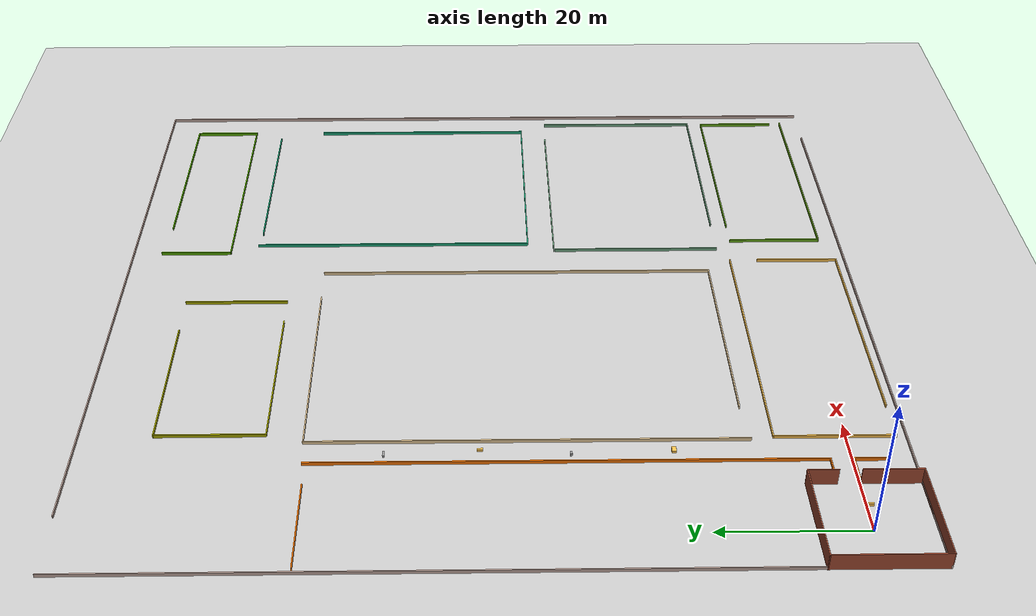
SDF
<sdf version="1.7">
 <world name="default">
  <light name="sun" type="directional">
   <pose>0 0 10 0 -0 0</pose>
   <diffuse>0.8 0.8 0.8 1</diffuse>
   <specular>0.2 0.2 0.2 1</specular>
   <attenuation>
    <range>1000</range>
    <constant>0.9</constant>
    <linear>0.01</linear>
    <quadratic>0.001</quadratic>
   </attenuation>
   <direction>-0.5 0.1 -0.9</direction>
   <spot><inner_angle>0</inner_angle><outer_angle>0</outer_angle><falloff>0</falloff></spot>
  </light>
  <model name="ground_plane">
   <static>1</static>
   <link name="link">
    <collision name="collision">
     <geometry><plane><normal>0 0 1</normal><size>100 100</size></plane></geometry>
     <surface><friction><ode><mu>100</mu><mu2>50</mu2></ode></friction></surface>
    </collision>
    <visual name="visual">
     <cast_shadows>0</cast_shadows>
     <geometry><plane><normal>0 0 1</normal><size>100 100</size></plane></geometry>
     <material>
      <script><uri>file://media/materials/scripts/gazebo.material</uri><name>Gazebo/Grey</name></script>
     </material>
    </visual>
   </link>
  </model>
  <gravity>0 0 -9.8</gravity>
  <magnetic_field>6e-06 2.3e-05 -4.2e-05</magnetic_field>
  <atmosphere type="adiabatic"/>
  <physics type="ode">
   <max_step_size>0.001</max_step_size>
   <real_time_factor>1</real_time_factor>
   <real_time_update_rate>1000</real_time_update_rate>
  </physics>
  <scene><ambient>0.4 0.4 0.4 1</ambient><background>0.7 0.7 0.7 1</background><shadows>1</shadows></scene>
  <spherical_coordinates>
   <surface_model>EARTH_WGS84</surface_model>
   <latitude_deg>0</latitude_deg>
   <longitude_deg>0</longitude_deg>
   <elevation>0</elevation>
   <heading_deg>0</heading_deg>
  </spherical_coordinates>
  <model name="farm">
   <pose>48.5764 47.0179 0 0 -0 0</pose>
   <link name="Wall_12">
    <collision name="Wall_12_Collision">
     <geometry><box><size>100.15 0.15 0.5</size></box></geometry>
     <pose>0 0 0.25 0 -0 0</pose>
    </collision>
    <visual name="Wall_12_Visual">
     <pose>0 0 0.25 0 -0 0</pose>
     <geometry><box><size>100.15 0.15 0.5</size></box></geometry>
     <material>
      <script><uri>file://media/materials/scripts/gazebo.material</uri><name>Gazebo/Grey</name></script>
      <ambient>0.760784 0.662745 0.627451 1</ambient>
     </material>
     <meta><layer>0</layer></meta>
    </visual>
    <pose>4.99351 55.0001 0 0 -0 0</pose>
   </link>
   <link name="Wall_13">
    <collision name="Wall_13_Collision">
     <geometry><box><size>110.15 0.15 0.5</size></box></geometry>
     <pose>0 0 0.25 0 -0 0</pose>
    </collision>
    <visual name="Wall_13_Visual">
     <pose>0 0 0.25 0 -0 0</pose>
     <geometry><box><size>110.15 0.15 0.5</size></box></geometry>
     <material>
      <script><uri>file://media/materials/scripts/gazebo.material</uri><name>Gazebo/Grey</name></script>
      <ambient>0.760784 0.662745 0.627451 1</ambient>
     </material>
     <meta><layer>0</layer></meta>
    </visual>
    <pose>55 5e-05 0 0 -0 -1.57068</pose>
   </link>
   <link name="Wall_15">
    <collision name="Wall_15_Collision">
     <geometry><box><size>110.15 0.15 0.5</size></box></geometry>
     <pose>0 0 0.25 0 -0 0</pose>
    </collision>
    <visual name="Wall_15_Visual">
     <pose>0 0 0.25 0 -0 0</pose>
     <geometry><box><size>110.15 0.15 0.5</size></box></geometry>
     <material>
      <script><uri>file://media/materials/scripts/gazebo.material</uri><name>Gazebo/Grey</name></script>
      <ambient>0.760784 0.662745 0.627451 1</ambient>
     </material>
     <meta><layer>0</layer></meta>
    </visual>
    <pose>-54.9825 5e-05 0 0 -0 1.57123</pose>
   </link>
   <link name="Wall_17">
    <collision name="Wall_17_Collision">
     <geometry><box><size>102.202 0.15 0.5</size></box></geometry>
     <pose>0 0 0.25 0 -0 0</pose>
    </collision>
    <visual name="Wall_17_Visual">
     <pose>0 0 0.25 0 -0 0</pose>
     <geometry><box><size>102.202 0.15 0.5</size></box></geometry>
     <material>
      <script><uri>file://media/materials/scripts/gazebo.material</uri><name>Gazebo/Grey</name></script>
      <ambient>0.760784 0.662745 0.627451 1</ambient>
     </material>
     <meta><layer>0</layer></meta>
    </visual>
    <pose>-3.93249 -54.9999 0 0 -0 0</pose>
   </link>
   <link name="Wall_20">
    <collision name="Wall_20_Collision">
     <geometry><box><size>15.1281 0.15 2.5</size></box></geometry>
     <pose>0 0 1.25 0 -0 0</pose>
    </collision>
    <visual name="Wall_20_Visual">
     <pose>0 0 1.25 0 -0 0</pose>
     <geometry><box><size>15.1281 0.15 2.5</size></box></geometry>
     <material>
      <script><uri>file://media/materials/scripts/gazebo.material</uri><name>Gazebo/Bricks</name></script>
      <ambient>1 1 1 1</ambient>
     </material>
     <meta><layer>0</layer></meta>
    </visual>
    <pose>-47.4955 -39.9999 0 0 -0 0</pose>
   </link>
   <link name="Wall_21">
    <collision name="Wall_21_Collision">
     <geometry><box><size>4.198 0.15 2.5</size></box></geometry>
     <pose>0 0 1.25 0 -0 0</pose>
    </collision>
    <visual name="Wall_21_Visual">
     <pose>0 0 1.25 0 -0 0</pose>
     <geometry><box><size>4.198 0.15 2.5</size></box></geometry>
     <material>
      <script><uri>file://media/materials/scripts/gazebo.material</uri><name>Gazebo/Bricks</name></script>
      <ambient>1 1 1 1</ambient>
     </material>
     <meta><layer>0</layer></meta>
    </visual>
    <pose>-40.0065 -42.0239 0 0 -0 -1.5708</pose>
   </link>
   <link name="Wall_23">
    <collision name="Wall_23_Collision">
     <geometry><box><size>15.15 0.15 2.5</size></box></geometry>
     <pose>0 0 1.25 0 -0 0</pose>
    </collision>
    <visual name="Wall_23_Visual">
     <pose>0 0 1.25 0 -0 0</pose>
     <geometry><box><size>15.15 0.15 2.5</size></box></geometry>
     <material>
      <script><uri>file://media/materials/scripts/gazebo.material</uri><name>Gazebo/Bricks</name></script>
      <ambient>1 1 1 1</ambient>
     </material>
     <meta><layer>0</layer></meta>
    </visual>
    <pose>-54.9715 -47.4999 0 0 -0 -1.56906</pose>
   </link>
   <link name="Wall_24">
    <collision name="Wall_24_Collision">
     <geometry><box><size>15.102 0.15 2.5</size></box></geometry>
     <pose>0 0 1.25 0 -0 0</pose>
    </collision>
    <visual name="Wall_24_Visual">
     <pose>0 0 1.25 0 -0 0</pose>
     <geometry><box><size>15.102 0.15 2.5</size></box></geometry>
     <material>
      <script><uri>file://media/materials/scripts/gazebo.material</uri><name>Gazebo/Bricks</name></script>
      <ambient>1 1 1 1</ambient>
     </material>
     <meta><layer>0</layer></meta>
    </visual>
    <pose>-47.4825 -54.9999 0 0 -0 0</pose>
   </link>
   <link name="Wall_256">
    <collision name="Wall_256_Collision">
     <geometry><box><size>32.25 0.15 0.5</size></box></geometry>
     <pose>0 0 0.25 0 -0 0</pose>
    </collision>
    <visual name="Wall_256_Visual">
     <pose>0 0 0.25 0 -0 0</pose>
     <geometry><box><size>32.25 0.15 0.5</size></box></geometry>
     <material>
      <script><uri>file://media/materials/scripts/gazebo.material</uri><name>Gazebo/Grey</name></script>
      <ambient>0.921569 0.807843 0.615686 1</ambient>
     </material>
     <meta><layer>0</layer></meta>
    </visual>
    <pose>-15.1815 25.0001 0 0 -0 0</pose>
   </link>
   <link name="Wall_258">
    <collision name="Wall_258_Collision">
     <geometry><box><size>34.5 0.15 0.5</size></box></geometry>
     <pose>0 0 0.25 0 -0 0</pose>
    </collision>
    <visual name="Wall_258_Visual">
     <pose>0 0 0.25 0 -0 0</pose>
     <geometry><box><size>34.5 0.15 0.5</size></box></geometry>
     <material>
      <script><uri>file://media/materials/scripts/gazebo.material</uri><name>Gazebo/Grey</name></script>
      <ambient>0.113725 0.666667 0.482353 1</ambient>
     </material>
     <meta><layer>0</layer></meta>
    </visual>
    <pose>49.9935 11.092 0 0 -0 1.5708</pose>
   </link>
   <link name="Wall_264">
    <collision name="Wall_264_Collision">
     <geometry><box><size>25.15 0.15 0.5</size></box></geometry>
     <pose>0 0 0.25 0 -0 0</pose>
    </collision>
    <visual name="Wall_264_Visual">
     <pose>0 0 0.25 0 -0 0</pose>
     <geometry><box><size>25.15 0.15 0.5</size></box></geometry>
     <material>
      <script><uri>file://media/materials/scripts/gazebo.material</uri><name>Gazebo/Grey</name></script>
      <ambient>0.666667 0.666667 0 1</ambient>
     </material>
     <meta><layer>0</layer></meta>
    </visual>
    <pose>-17.5065 30.0001 0 0 -0 0</pose>
   </link>
   <link name="Wall_28">
    <collision name="Wall_28_Collision">
     <geometry><box><size>8 0.15 2.5</size></box></geometry>
     <pose>0 0 1.25 0 -0 0</pose>
    </collision>
    <visual name="Wall_28_Visual">
     <pose>0 0 1.25 0 -0 0</pose>
     <geometry><box><size>8 0.15 2.5</size></box></geometry>
     <material>
      <script><uri>file://media/materials/scripts/gazebo.material</uri><name>Gazebo/Bricks</name></script>
      <ambient>1 1 1 1</ambient>
     </material>
     <meta><layer>0</layer></meta>
    </visual>
    <pose>-40.0065 -51.048 0 0 -0 -1.5708</pose>
   </link>
   <link name="Wall_30">
    <collision name="Wall_30_Collision">
     <geometry><box><size>4.5 0.15 0.5</size></box></geometry>
     <pose>0 0 0.25 0 -0 0</pose>
    </collision>
    <visual name="Wall_30_Visual">
     <pose>0 0 0.25 0 -0 0</pose>
     <geometry><box><size>4.5 0.15 0.5</size></box></geometry>
     <material>
      <script><uri>file://media/materials/scripts/gazebo.material</uri><name>Gazebo/Grey</name></script>
      <ambient>0.996078 0.47451 0.0196078 1</ambient>
     </material>
     <meta><layer>0</layer></meta>
    </visual>
    <pose>-37.8315 -44.048 0 0 -0 0</pose>
   </link>
   <link name="Wall_33">
    <collision name="Wall_33_Collision">
     <geometry><box><size>69 0.15 0.5</size></box></geometry>
     <pose>0 0 0.25 0 -0 0</pose>
    </collision>
    <visual name="Wall_33_Visual">
     <pose>0 0 0.25 0 -0 0</pose>
     <geometry><box><size>69 0.15 0.5</size></box></geometry>
     <material>
      <script><uri>file://media/materials/scripts/gazebo.material</uri><name>Gazebo/Grey</name></script>
      <ambient>0.996078 0.47451 0.0196078 1</ambient>
     </material>
     <meta><layer>0</layer></meta>
    </visual>
    <pose>-35.6565 -9.62295 0 0 -0 1.5708</pose>
   </link>
   <link name="Wall_35">
    <collision name="Wall_35_Collision">
     <geometry><box><size>14.75 0.15 0.5</size></box></geometry>
     <pose>0 0 0.25 0 -0 0</pose>
    </collision>
    <visual name="Wall_35_Visual">
     <pose>0 0 0.25 0 -0 0</pose>
     <geometry><box><size>14.75 0.15 0.5</size></box></geometry>
     <material>
      <script><uri>file://media/materials/scripts/gazebo.material</uri><name>Gazebo/Grey</name></script>
      <ambient>0.996078 0.47451 0.0196078 1</ambient>
     </material>
     <meta><layer>0</layer></meta>
    </visual>
    <pose>-47.0535 24.445 0 0 -0 0</pose>
   </link>
   <link name="Wall_38">
    <collision name="Wall_38_Collision">
     <geometry><box><size>4.5 0.15 0.5</size></box></geometry>
     <pose>0 0 0.25 0 -0 0</pose>
    </collision>
    <visual name="Wall_38_Visual">
     <pose>0 0 0.25 0 -0 0</pose>
     <geometry><box><size>4.5 0.15 0.5</size></box></geometry>
     <material>
      <script><uri>file://media/materials/scripts/gazebo.material</uri><name>Gazebo/Grey</name></script>
      <ambient>0.996078 0.47451 0.0196078 1</ambient>
     </material>
     <meta><layer>0</layer></meta>
    </visual>
    <pose>-37.8315 -47.123 0 0 -0 0</pose>
   </link>
   <link name="Wall_39">
    <collision name="Wall_39_Collision">
     <geometry><box><size>4.25 0.15 0.5</size></box></geometry>
     <pose>0 0 0.25 0 -0 0</pose>
    </collision>
    <visual name="Wall_39_Visual">
     <pose>0 0 0.25 0 -0 0</pose>
     <geometry><box><size>4.25 0.15 0.5</size></box></geometry>
     <material>
      <script><uri>file://media/materials/scripts/gazebo.material</uri><name>Gazebo/Grey</name></script>
      <ambient>0.996078 0.47451 0.0196078 1</ambient>
     </material>
     <meta><layer>0</layer></meta>
    </visual>
    <pose>-35.6565 -49.173 0 0 -0 -1.5708</pose>
   </link>
   <link name="Wall_41">
    <collision name="Wall_41_Collision">
     <geometry><box><size>35.15 0.15 0.5</size></box></geometry>
     <pose>0 0 0.25 0 -0 0</pose>
    </collision>
    <visual name="Wall_41_Visual">
     <pose>0 0 0.25 0 -0 0</pose>
     <geometry><box><size>35.15 0.15 0.5</size></box></geometry>
     <material>
      <script><uri>file://media/materials/scripts/gazebo.material</uri><name>Gazebo/Grey</name></script>
      <ambient>1 0.764706 0.305882 1</ambient>
     </material>
     <meta><layer>0</layer></meta>
    </visual>
    <pose>-7.50649 -53.6649 0 0 -0 0</pose>
   </link>
   <link name="Wall_43">
    <collision name="Wall_43_Collision">
     <geometry><box><size>41.285 0.15 0.5</size></box></geometry>
     <pose>0 0 0.25 0 -0 0</pose>
    </collision>
    <visual name="Wall_43_Visual">
     <pose>0 0 0.25 0 -0 0</pose>
     <geometry><box><size>41.285 0.15 0.5</size></box></geometry>
     <material>
      <script><uri>file://media/materials/scripts/gazebo.material</uri><name>Gazebo/Grey</name></script>
      <ambient>1 0.764706 0.305882 1</ambient>
     </material>
     <meta><layer>0</layer></meta>
    </visual>
    <pose>-10.574 -37.315 0 0 -0 3.14159</pose>
   </link>
   <link name="Wall_44">
    <collision name="Wall_44_Collision">
     <geometry><box><size>16.5 0.15 0.5</size></box></geometry>
     <pose>0 0 0.25 0 -0 0</pose>
    </collision>
    <visual name="Wall_44_Visual">
     <pose>0 0 0.25 0 -0 0</pose>
     <geometry><box><size>16.5 0.15 0.5</size></box></geometry>
     <material>
      <script><uri>file://media/materials/scripts/gazebo.material</uri><name>Gazebo/Grey</name></script>
      <ambient>1 0.764706 0.305882 1</ambient>
     </material>
     <meta><layer>0</layer></meta>
    </visual>
    <pose>-31.1415 -45.49 0 0 -0 -1.5708</pose>
   </link>
   <link name="Wall_48">
    <collision name="Wall_48_Collision">
     <geometry><box><size>37.077 0.15 0.5</size></box></geometry>
     <pose>0 0 0.25 0 -0 0</pose>
    </collision>
    <visual name="Wall_48_Visual">
     <pose>0 0 0.25 0 -0 0</pose>
     <geometry><box><size>37.077 0.15 0.5</size></box></geometry>
     <material>
      <script><uri>file://media/materials/scripts/gazebo.material</uri><name>Gazebo/Grey</name></script>
      <ambient>0.415686 0.666667 0.0862745 1</ambient>
     </material>
     <meta><layer>0</layer></meta>
    </visual>
    <pose>33.964 -51.9999 0 0 -0 3.14159</pose>
   </link>
   <link name="Wall_49">
    <collision name="Wall_49_Collision">
     <geometry><box><size>14.028 0.15 0.5</size></box></geometry>
     <pose>0 0 0.25 0 -0 0</pose>
    </collision>
    <visual name="Wall_49_Visual">
     <pose>0 0 0.25 0 -0 0</pose>
     <geometry><box><size>14.028 0.15 0.5</size></box></geometry>
     <material>
      <script><uri>file://media/materials/scripts/gazebo.material</uri><name>Gazebo/Grey</name></script>
      <ambient>0.4 0.666667 0.0941176 1</ambient>
     </material>
     <meta><layer>0</layer></meta>
    </visual>
    <pose>15.5005 -45.0609 0 0 -0 1.5708</pose>
   </link>
   <link name="Wall_52">
    <collision name="Wall_52_Collision">
     <geometry><box><size>32.484 0.15 0.5</size></box></geometry>
     <pose>0 0 0.25 0 -0 0</pose>
    </collision>
    <visual name="Wall_52_Visual">
     <pose>0 0 0.25 0 -0 0</pose>
     <geometry><box><size>32.484 0.15 0.5</size></box></geometry>
     <material>
      <script><uri>file://media/materials/scripts/gazebo.material</uri><name>Gazebo/Grey</name></script>
      <ambient>0.443137 0.666667 0.517647 1</ambient>
     </material>
     <meta><layer>0</layer></meta>
    </visual>
    <pose>36.1605 -35.612 0 0 -0 0</pose>
   </link>
   <link name="Wall_53">
    <collision name="Wall_53_Collision">
     <geometry><box><size>25.25 0.15 0.5</size></box></geometry>
     <pose>0 0 0.25 0 -0 0</pose>
    </collision>
    <visual name="Wall_53_Visual">
     <pose>0 0 0.25 0 -0 0</pose>
     <geometry><box><size>25.25 0.15 0.5</size></box></geometry>
     <material>
      <script><uri>file://media/materials/scripts/gazebo.material</uri><name>Gazebo/Grey</name></script>
      <ambient>0.443137 0.666667 0.517647 1</ambient>
     </material>
     <meta><layer>0</layer></meta>
    </visual>
    <pose>52.3275 -23.062 0 0 -0 1.5708</pose>
   </link>
   <link name="Wall_55">
    <collision name="Wall_55_Collision">
     <geometry><box><size>25.25 0.15 0.5</size></box></geometry>
     <pose>0 0 0.25 0 -0 0</pose>
    </collision>
    <visual name="Wall_55_Visual">
     <pose>0 0 0.25 0 -0 0</pose>
     <geometry><box><size>25.25 0.15 0.5</size></box></geometry>
     <material>
      <script><uri>file://media/materials/scripts/gazebo.material</uri><name>Gazebo/Grey</name></script>
      <ambient>0.443137 0.666667 0.517647 1</ambient>
     </material>
     <meta><layer>0</layer></meta>
    </visual>
    <pose>13.2275 -23.062 0 0 -0 -1.5708</pose>
   </link>
   <link name="Wall_57">
    <collision name="Wall_57_Collision">
     <geometry><box><size>59.459 0.15 0.5</size></box></geometry>
     <pose>0 0 0.25 0 -0 0</pose>
    </collision>
    <visual name="Wall_57_Visual">
     <pose>0 0 0.25 0 -0 0</pose>
     <geometry><box><size>59.459 0.15 0.5</size></box></geometry>
     <material>
      <script><uri>file://media/materials/scripts/gazebo.material</uri><name>Gazebo/Grey</name></script>
      <ambient>0.921569 0.807843 0.615686 1</ambient>
     </material>
     <meta><layer>0</layer></meta>
    </visual>
    <pose>-31.5275 -4.65445 0 0 -0 1.5708</pose>
   </link>
   <link name="Wall_59">
    <collision name="Wall_59_Collision">
     <geometry><box><size>58.7698 0.15 0.5</size></box></geometry>
     <pose>0 0 0.25 0 -0 0</pose>
    </collision>
    <visual name="Wall_59_Visual">
     <pose>0 0 0.25 0 -0 0</pose>
     <geometry><box><size>58.7698 0.15 0.5</size></box></geometry>
     <material>
      <script><uri>file://media/materials/scripts/gazebo.material</uri><name>Gazebo/Grey</name></script>
      <ambient>0.921569 0.807843 0.615686 1</ambient>
     </material>
     <meta><layer>0</layer></meta>
    </visual>
    <pose>7.29951 -4.30945 0 0 -0 -1.5708</pose>
   </link>
   <link name="Wall_60">
    <collision name="Wall_60_Collision">
     <geometry><box><size>32.4561 0.15 0.5</size></box></geometry>
     <pose>0 0 0.25 0 -0 0</pose>
    </collision>
    <visual name="Wall_60_Visual">
     <pose>0 0 0.25 0 -0 0</pose>
     <geometry><box><size>32.4561 0.15 0.5</size></box></geometry>
     <material>
      <script><uri>file://media/materials/scripts/gazebo.material</uri><name>Gazebo/Grey</name></script>
      <ambient>0.921569 0.807843 0.615686 1</ambient>
     </material>
     <meta><layer>0</layer></meta>
    </visual>
    <pose>-8.85349 -33.651 0 0 -0 -3.13961</pose>
   </link>
   <link name="Wall_62">
    <collision name="Wall_62_Collision">
     <geometry><box><size>42.25 0.15 0.5</size></box></geometry>
     <pose>0 0 0.25 0 -0 0</pose>
    </collision>
    <visual name="Wall_62_Visual">
     <pose>0 0 0.25 0 -0 0</pose>
     <geometry><box><size>42.25 0.15 0.5</size></box></geometry>
     <material>
      <script><uri>file://media/materials/scripts/gazebo.material</uri><name>Gazebo/Grey</name></script>
      <ambient>0.113725 0.666667 0.482353 1</ambient>
     </material>
     <meta><layer>0</layer></meta>
    </visual>
    <pose>14.9935 14.818 0 0 -0 -1.5708</pose>
   </link>
   <link name="Wall_63">
    <collision name="Wall_63_Collision">
     <geometry><box><size>35.15 0.15 0.5</size></box></geometry>
     <pose>0 0 0.25 0 -0 0</pose>
    </collision>
    <visual name="Wall_63_Visual">
     <pose>0 0 0.25 0 -0 0</pose>
     <geometry><box><size>35.15 0.15 0.5</size></box></geometry>
     <material>
      <script><uri>file://media/materials/scripts/gazebo.material</uri><name>Gazebo/Grey</name></script>
      <ambient>0.113725 0.666667 0.482353 1</ambient>
     </material>
     <meta><layer>0</layer></meta>
    </visual>
    <pose>32.4935 -6.23195 0 0 -0 0</pose>
   </link>
   <link name="Wall_65">
    <collision name="Wall_65_Collision">
     <geometry><box><size>29.75 0.15 0.5</size></box></geometry>
     <pose>0 0 0.25 0 -0 0</pose>
    </collision>
    <visual name="Wall_65_Visual">
     <pose>0 0 0.25 0 -0 0</pose>
     <geometry><box><size>29.75 0.15 0.5</size></box></geometry>
     <material>
      <script><uri>file://media/materials/scripts/gazebo.material</uri><name>Gazebo/Grey</name></script>
      <ambient>0.113725 0.666667 0.482353 1</ambient>
     </material>
     <meta><layer>0</layer></meta>
    </visual>
    <pose>33.1295 35.488 0 0 -0 3.14159</pose>
   </link>
   <link name="Wall_67">
    <collision name="Wall_67_Collision">
     <geometry><box><size>23.15 0.15 0.5</size></box></geometry>
     <pose>0 0 0.25 0 -0 0</pose>
    </collision>
    <visual name="Wall_67_Visual">
     <pose>0 0 0.25 0 -0 0</pose>
     <geometry><box><size>23.15 0.15 0.5</size></box></geometry>
     <material>
      <script><uri>file://media/materials/scripts/gazebo.material</uri><name>Gazebo/Grey</name></script>
      <ambient>0.666667 0.666667 0 1</ambient>
     </material>
     <meta><layer>0</layer></meta>
    </visual>
    <pose>-18.5065 45.0001 0 0 -0 3.14159</pose>
   </link>
   <link name="Wall_68">
    <collision name="Wall_68_Collision">
     <geometry><box><size>15.15 0.15 0.5</size></box></geometry>
     <pose>0 0 0.25 0 -0 0</pose>
    </collision>
    <visual name="Wall_68_Visual">
     <pose>0 0 0.25 0 -0 0</pose>
     <geometry><box><size>15.15 0.15 0.5</size></box></geometry>
     <material>
      <script><uri>file://media/materials/scripts/gazebo.material</uri><name>Gazebo/Grey</name></script>
      <ambient>0.666667 0.666667 0 1</ambient>
     </material>
     <meta><layer>0</layer></meta>
    </visual>
    <pose>-30.0065 37.5001 0 0 -0 -1.5708</pose>
   </link>
   <link name="Wall_71">
    <collision name="Wall_71_Collision">
     <geometry><box><size>15.15 0.15 0.5</size></box></geometry>
     <pose>0 0 0.25 0 -0 0</pose>
    </collision>
    <visual name="Wall_71_Visual">
     <pose>0 0 0.25 0 -0 0</pose>
     <geometry><box><size>15.15 0.15 0.5</size></box></geometry>
     <material>
      <script><uri>file://media/materials/scripts/gazebo.material</uri><name>Gazebo/Grey</name></script>
      <ambient>0.666667 0.666667 0 1</ambient>
     </material>
     <meta><layer>0</layer></meta>
    </visual>
    <pose>-0.006492 37.5001 0 0 -0 1.5708</pose>
   </link>
   <link name="Wall_74">
    <collision name="Wall_74_Collision">
     <geometry><box><size>30.15 0.15 0.5</size></box></geometry>
     <pose>0 0 0.25 0 -0 0</pose>
    </collision>
    <visual name="Wall_74_Visual">
     <pose>0 0 0.25 0 -0 0</pose>
     <geometry><box><size>30.15 0.15 0.5</size></box></geometry>
     <material>
      <script><uri>file://media/materials/scripts/gazebo.material</uri><name>Gazebo/Grey</name></script>
      <ambient>0.333333 0.666667 0 1</ambient>
     </material>
     <meta><layer>0</layer></meta>
    </visual>
    <pose>34.9935 50.0001 0 0 -0 0</pose>
   </link>
   <link name="Wall_75">
    <collision name="Wall_75_Collision">
     <geometry><box><size>10.15 0.15 0.5</size></box></geometry>
     <pose>0 0 0.25 0 -0 0</pose>
    </collision>
    <visual name="Wall_75_Visual">
     <pose>0 0 0.25 0 -0 0</pose>
     <geometry><box><size>10.15 0.15 0.5</size></box></geometry>
     <material>
      <script><uri>file://media/materials/scripts/gazebo.material</uri><name>Gazebo/Grey</name></script>
      <ambient>0.333333 0.666667 0 1</ambient>
     </material>
     <meta><layer>0</layer></meta>
    </visual>
    <pose>49.9935 45.0001 0 0 -0 -1.5708</pose>
   </link>
   <link name="Wall_76">
    <collision name="Wall_76_Collision">
     <geometry><box><size>37.15 0.15 0.5</size></box></geometry>
     <pose>0 0 0.25 0 -0 0</pose>
    </collision>
    <visual name="Wall_76_Visual">
     <pose>0 0 0.25 0 -0 0</pose>
     <geometry><box><size>37.15 0.15 0.5</size></box></geometry>
     <material>
      <script><uri>file://media/materials/scripts/gazebo.material</uri><name>Gazebo/Grey</name></script>
      <ambient>0.333333 0.666667 0 1</ambient>
     </material>
     <meta><layer>0</layer></meta>
    </visual>
    <pose>31.4935 40.0001 0 0 -0 3.14159</pose>
   </link>
   <link name="Wall_77">
    <collision name="Wall_77_Collision">
     <geometry><box><size>10.795 0.15 0.5</size></box></geometry>
     <pose>0 0 0.25 0 -0 0</pose>
    </collision>
    <visual name="Wall_77_Visual">
     <pose>0 0 0.25 0 -0 0</pose>
     <geometry><box><size>10.795 0.15 0.5</size></box></geometry>
     <material>
      <script><uri>file://media/materials/scripts/gazebo.material</uri><name>Gazebo/Grey</name></script>
      <ambient>0.333333 0.666667 0 1</ambient>
     </material>
     <meta><layer>0</layer></meta>
    </visual>
    <pose>12.9935 45.3226 0 0 -0 1.5708</pose>
   </link>
   <link name="Wall_79">
    <collision name="Wall_79_Collision">
     <geometry><box><size>12.25 0.15 0.5</size></box></geometry>
     <pose>0 0 0.25 0 -0 0</pose>
    </collision>
    <visual name="Wall_79_Visual">
     <pose>0 0 0.25 0 -0 0</pose>
     <geometry><box><size>12.25 0.15 0.5</size></box></geometry>
     <material>
      <script><uri>file://media/materials/scripts/gazebo.material</uri><name>Gazebo/Grey</name></script>
      <ambient>1 0.764706 0.305882 1</ambient>
     </material>
     <meta><layer>0</layer></meta>
    </visual>
    <pose>9.99351 -47.615 0 0 -0 1.5708</pose>
   </link>
   <link name="Wall_83">
    <collision name="Wall_83_Collision">
     <geometry><box><size>32.75 0.15 0.5</size></box></geometry>
     <pose>0 0 0.25 0 -0 0</pose>
    </collision>
    <visual name="Wall_83_Visual">
     <pose>0 0 0.25 0 -0 0</pose>
     <geometry><box><size>32.75 0.15 0.5</size></box></geometry>
     <material>
      <script><uri>file://media/materials/scripts/gazebo.material</uri><name>Gazebo/Grey</name></script>
      <ambient>0.4 0.666667 0.0941176 1</ambient>
     </material>
     <meta><layer>0</layer></meta>
    </visual>
    <pose>35.8405 -38.0399 0 0 -0 0</pose>
   </link>
   <link name="Wall_84">
    <collision name="Wall_84_Collision">
     <geometry><box><size>12.25 0.15 0.5</size></box></geometry>
     <pose>0 0 0.25 0 -0 0</pose>
    </collision>
    <visual name="Wall_84_Visual">
     <pose>0 0 0.25 0 -0 0</pose>
     <geometry><box><size>12.25 0.15 0.5</size></box></geometry>
     <material>
      <script><uri>file://media/materials/scripts/gazebo.material</uri><name>Gazebo/Grey</name></script>
      <ambient>0.4 0.666667 0.0941176 1</ambient>
     </material>
     <meta><layer>0</layer></meta>
    </visual>
    <pose>52.1405 -44.09 0 0 -0 -1.5708</pose>
   </link>
   <link name="Wall_86">
    <collision name="Wall_86_Collision">
     <geometry><box><size>34 0.15 0.5</size></box></geometry>
     <pose>0 0 0.25 0 -0 0</pose>
    </collision>
    <visual name="Wall_86_Visual">
     <pose>0 0 0.25 0 -0 0</pose>
     <geometry><box><size>34 0.15 0.5</size></box></geometry>
     <material>
      <script><uri>file://media/materials/scripts/gazebo.material</uri><name>Gazebo/Grey</name></script>
      <ambient>0.443137 0.666667 0.517647 1</ambient>
     </material>
     <meta><layer>0</layer></meta>
    </visual>
    <pose>30.1925 -10.2739 0 0 -0 0</pose>
   </link>
   <static>1</static>
  </model>
  <model name="Box_15x30">
   <link name="Wall">
    <pose>0 0 0.1985 0 -0 0</pose>
    <inertial>
     <mass>5</mass>
     <inertia><ixx>0.3089</ixx><iyy>0.1022</iyy><izz>0.2797</izz><ixy>0</ixy><ixz>0</ixz><iyz>0</iyz></inertia>
    </inertial>
    <collision name="Wall_Collision"><geometry><box><size>0.296 0.764 0.397</size></box></geometry></collision>
    <visual name="Wall_Visual">
     <geometry><box><size>0.296 0.764 0.397</size></box></geometry>
     <material>
      <script><uri>file://media/materials/scripts/gazebo.material</uri><name>Gazebo/Grey</name></script>
      <ambient>1 0.764706 0.305882 1</ambient>
     </material>
    </visual>
   </link>
   <static>1</static>
   <pose>4.53823 -0.52319 0 0 -0 0</pose>
  </model>
  <model name="Box_33x15">
   <link name="Wall">
    <pose>0 0 0.1985 0 -0 0</pose>
    <inertial>
     <mass>5</mass>
     <inertia><ixx>0.2157</ixx><iyy>0.3597</iyy><izz>0.444</izz><ixy>0</ixy><ixz>0</ixz><iyz>0</iyz></inertia>
    </inertial>
    <collision name="Wall_Collision"><geometry><box><size>0.84 0.6 0.397</size></box></geometry></collision>
    <visual name="Wall_Visual">
     <geometry><box><size>0.84 0.6 0.397</size></box></geometry>
     <material>
      <script><uri>file://media/materials/scripts/gazebo.material</uri><name>Gazebo/Grey</name></script>
      <ambient>1 0.764706 0.305882 1</ambient>
     </material>
    </visual>
   </link>
   <static>1</static>
   <pose>15.0647 23.1605 0 0 -0 0</pose>
  </model>
  <model name="Box_24x15W">
   <link name="Wall">
    <pose>0 0 0.1985 0 -0 0</pose>
    <inertial>
     <mass>5</mass>
     <inertia><ixx>0.1022</ixx><iyy>0.2197</iyy><izz>0.1905</izz><ixy>0</ixy><ixz>0</ixz><iyz>0</iyz></inertia>
    </inertial>
    <collision name="Wall_Collision"><geometry><box><size>0.608 0.296 0.397</size></box></geometry></collision>
    <visual name="Wall_Visual">
     <geometry><box><size>0.608 0.296 0.397</size></box></geometry>
     <material>
      <script><uri>file://media/materials/scripts/gazebo.material</uri><name>Gazebo/Grey</name></script>
      <ambient>1 1 1 1</ambient>
     </material>
    </visual>
   </link>
   <static>1</static>
   <pose>14.5299 36.6942 0 0 -0 0</pose>
  </model>
  <model name="Box_15x30_0">
   <link name="Wall">
    <pose>0 0 0.1985 0 -0 0</pose>
    <inertial>
     <mass>5</mass>
     <inertia><ixx>0.3089</ixx><iyy>0.1022</iyy><izz>0.2797</izz><ixy>0</ixy><ixz>0</ixz><iyz>0</iyz></inertia>
    </inertial>
    <collision name="Wall_Collision"><geometry><box><size>0.296 0.764 0.397</size></box></geometry></collision>
    <visual name="Wall_Visual">
     <geometry><box><size>0.296 0.764 0.397</size></box></geometry>
     <material>
      <script><uri>file://media/materials/scripts/gazebo.material</uri><name>Gazebo/Grey</name></script>
      <ambient>1 0.764706 0.305882 1</ambient>
     </material>
    </visual>
   </link>
   <static>1</static>
   <pose>15.3787 48.6395 0 0 -0 0</pose>
  </model>
  <model name="Box_36x15W">
   <link name="Wall">
    <pose>0 0 0.1985 0 -0 0</pose>
    <inertial>
     <mass>5</mass>
     <inertia><ixx>0.1022</ixx><iyy>0.4107</iyy><izz>0.3815</izz><ixy>0</ixy><ixz>0</ixz><iyz>0</iyz></inertia>
    </inertial>
    <collision name="Wall_Collision"><geometry><box><size>0.91 0.296 0.397</size></box></geometry></collision>
    <visual name="Wall_Visual">
     <geometry><box><size>0.91 0.296 0.397</size></box></geometry>
     <material>
      <script><uri>file://media/materials/scripts/gazebo.material</uri><name>Gazebo/Grey</name></script>
      <ambient>1 1 1 1</ambient>
     </material>
    </visual>
   </link>
   <static>1</static>
   <pose>14.6937 61.2859 0 0 -0 0</pose>
  </model>
 </world>
</sdf>
